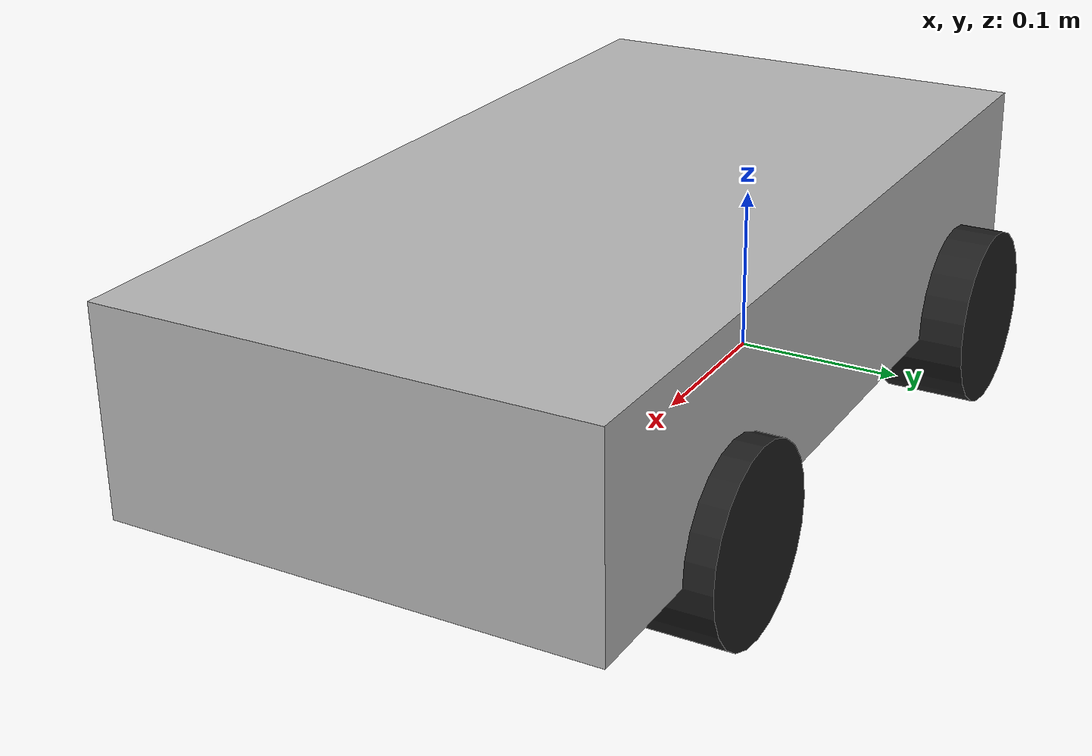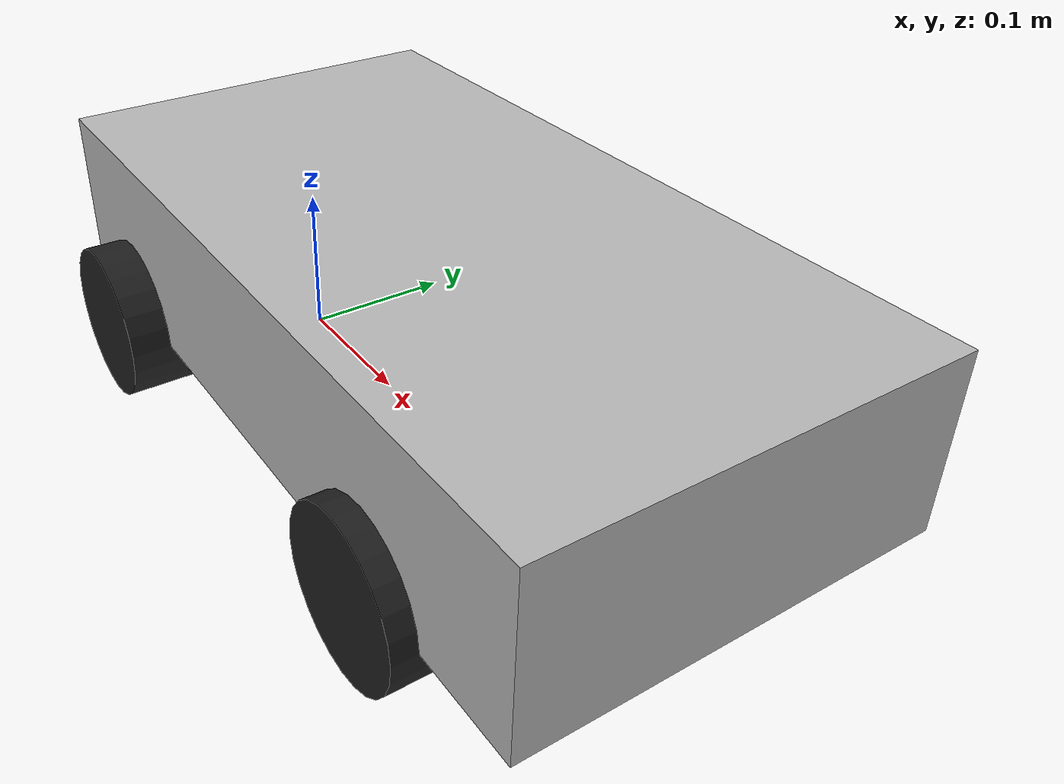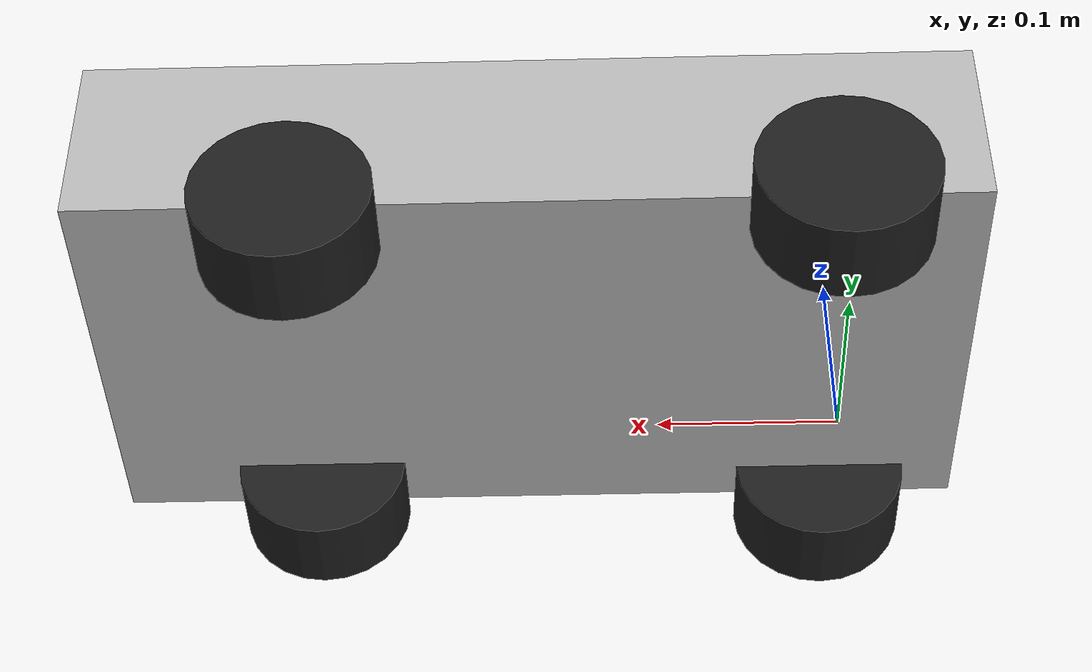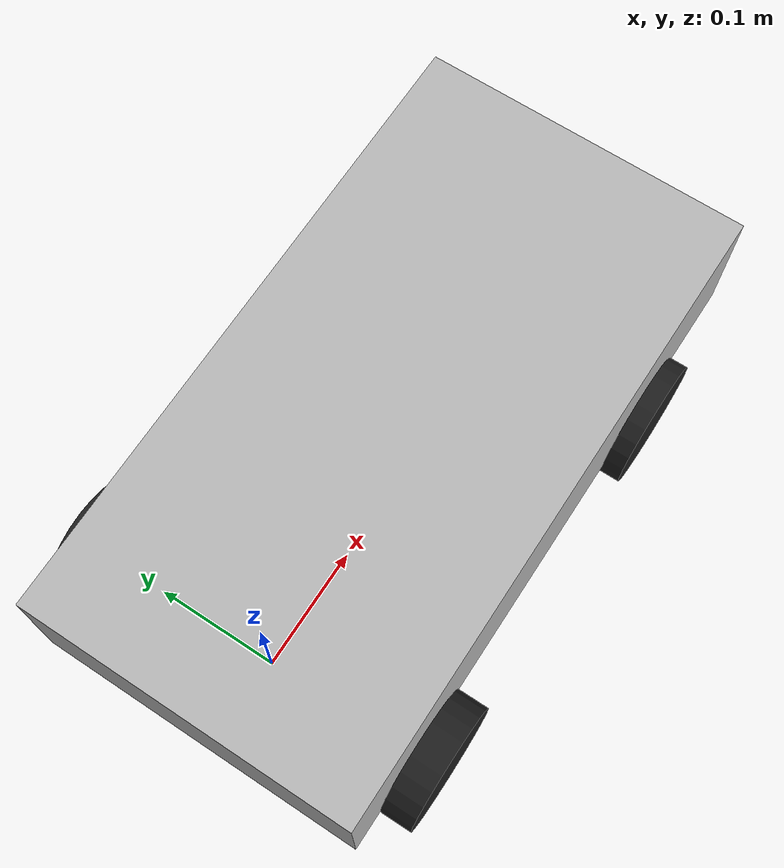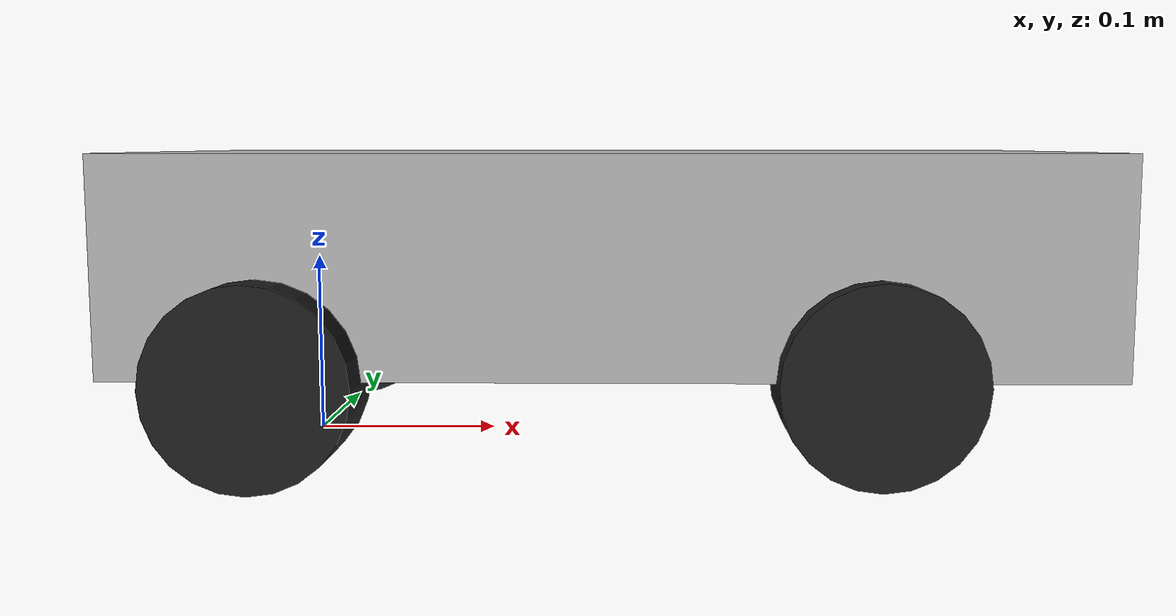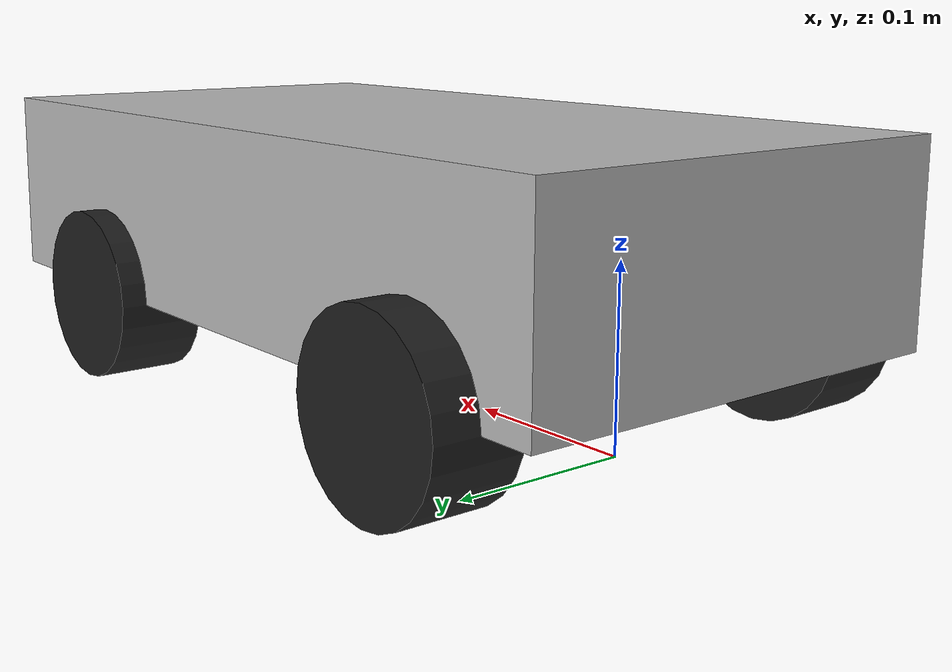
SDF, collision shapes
<?xml version="1.0"?>
<sdf version="1.4">
  <model name="Unicycle">
    <pose>0.0 0 0.05 0 0 0</pose>
    <link name="carbody">
      <pose>0.0 0 0 0 0 0</pose>
      <inertial>
        <pose>0.15 0 0.1 0 0 0</pose>
        <mass>2.4</mass>
        <!-- will have to do xacro-->
        <inertia>
          <ixx>0.41</ixx>
          <ixy>0</ixy>
          <ixz>0</ixz>
          <iyy>0.416553</iyy>
          <iyz>0</iyz>
          <izz>0.216553</izz>
        </inertia>
      </inertial>
      <collision name="carbody_collision">
        <pose>0.17 0.0 0.055 0.0 0.0 0.0</pose>
        <geometry>
          <box>
            <size>0.50 0.26 0.11</size>
          </box>
        </geometry>
        <surface>
          <contact>
            <ode/>
          </contact>
          <friction>
            <ode/>
          </friction>
        </surface>
      </collision>
      <visual name="carbody_visual">
        <pose>0.0 0.005 0.0 0.0 0.0 0.0</pose>
        <geometry>
          <mesh>
            <uri>model://rccar/meshes/traxxas1.dae</uri>
          </mesh>
        </geometry>
      </visual>
      <velocity_decay>
        <linear>0</linear>
        <angular>0</angular>
      </velocity_decay>
      <self_collide>0</self_collide>
    </link>
    <link name="rear_right_wheel">
      <pose>0 -0.13 0 1.57 0 0</pose>
      <inertial>
        <mass>0.6</mass>
        <inertia>
          <ixx>0.01</ixx>
          <ixy>0</ixy>
          <ixz>0</ixz>
          <iyy>0.01</iyy>
          <iyz>0</iyz>
          <izz>0.01</izz>
        </inertia>
      </inertial>
      <collision name="collision">
        <geometry>
          <cylinder>
            <radius>0.05</radius>
            <length>0.05</length>
          </cylinder>
        </geometry>
        <max_contacts>1</max_contacts>
        <surface>
          <friction>
            <ode>
              <mu>5.0</mu>
              <mu2>5.0</mu2>
              <fdir1>0 0 1</fdir1>
              <slip1>0.0</slip1>
              <slip2>0.0</slip2>
            </ode>
          </friction>
          <contact>
            <ode>
              <min_depth>0.001</min_depth>
              <kp>1e6</kp>
              <soft_cfm>0.005</soft_cfm>
            </ode>
          </contact>
        </surface>
      </collision>
      <visual name="visual">
        <pose>0 0 0 0 1.57079 0</pose>
        <geometry>
          <mesh>
            <scale>1 1 1</scale>
            <uri>model://rccar/meshes/Wheel.dae</uri>
          </mesh>
        </geometry>
        <material>
          <script>
            <name>Gazebo/Black</name>
            <uri>__default__</uri>
          </script>
        </material>
      </visual>
    </link>
    <link name="rear_left_wheel">
      <pose>0 0.13 0 1.57079 0 0</pose>
      <inertial>
        <mass>0.6</mass>
        <inertia>
          <ixx>0.01</ixx>
          <ixy>0</ixy>
          <ixz>0</ixz>
          <iyy>0.01</iyy>
          <iyz>0</iyz>
          <izz>0.01</izz>
        </inertia>
      </inertial>
      <collision name="collision">
        <geometry>
          <cylinder>
            <radius>0.05</radius>
            <length>0.05</length>
          </cylinder>
        </geometry>
        <max_contacts>1</max_contacts>
        <surface>
          <friction>
            <ode>
              <mu>5.0</mu>
              <mu2>5.0</mu2>
              <fdir1>0 0 1</fdir1>
              <slip1>0.0</slip1>
              <slip2>0.0</slip2>
            </ode>
          </friction>
          <contact>
            <ode>
              <min_depth>0.001</min_depth>
              <kp>1e6</kp>
              <soft_cfm>0.005</soft_cfm>
            </ode>
          </contact>
        </surface>
      </collision>
      <visual name="visual">
        <pose>0 0 0 0 1.57079 0</pose>
        <geometry>
          <mesh>
            <scale>1 1 1</scale>
            <uri>model://rccar/meshes/Wheel.dae</uri>
          </mesh>
        </geometry>
        <material>
          <script>
            <name>Gazebo/Black</name>
            <uri>__default__</uri>
          </script>
        </material>
      </visual>
      <velocity_decay>
        <linear>0</linear>
        <angular>0</angular>
      </velocity_decay>
      <velocity_decay>
        <linear>0</linear>
        <angular>0</angular>
      </velocity_decay>
      <self_collide>0</self_collide>
    </link>
    <joint type="revolute" name="rear_left_wheel_joint">
      <child>rear_left_wheel</child>
      <parent>carbody</parent>
      <axis>
        <xyz>0 1 0.0</xyz>
				<dynamics>
          <damping>0.0</damping>
        </dynamics>
      </axis>
    </joint>
    <joint type="revolute" name="rear_right_wheel_joint">
      <child>rear_right_wheel</child>
      <parent>carbody</parent>
      <axis>
        <xyz>0 1 0.0</xyz>
				<dynamics>
          <damping>0.0</damping>
        </dynamics>
      </axis>
    </joint>
    <link name="steeringblock1">
      <pose>0.3 -0.12 0 0 0 0</pose>
      <inertial>
        <pose>0 0 0 0 0 0</pose>
        <mass>0.1 </mass>
        <!-- very less mass-->
        <inertia>
          <ixx> 1e-3 </ixx>
          <ixy>0</ixy>
          <ixz>0</ixz>
          <iyy> 1e-3 </iyy>
          <iyz>0</iyz>
          <izz> 1 </izz><!-- Very High Inertia on Z axis-->
        </inertia>
      </inertial>
    </link>
    <joint name="base_to_steeringblock1" type="revolute">
      <child>steeringblock1</child>
      <parent>carbody</parent>
      <axis>
        <xyz>0 0 1</xyz>
        <limit>
          <lower>-0.785</lower>
          <upper>0.785</upper>
        </limit>
        <dynamics>
          <damping>0.0</damping>
        </dynamics>
      </axis>
      <physics>
        <ode>
          <limit>
            <cfm>0.0</cfm>
            <erp>0.5</erp>
          </limit>
        </ode>
      </physics>
    </joint>
    <link name="frontwheel1">
      <pose>0.3 -0.12 0 -1.570796 0 0</pose>
			<inertial>
        <mass>0.6</mass>
        <inertia>
          <ixx>0.01</ixx>
          <ixy>0</ixy>
          <ixz>0</ixz>
          <iyy>0.01</iyy>
          <iyz>0</iyz>
          <izz>0.01</izz>
				</inertia>
      </inertial>
      <collision name="frontwheel1_collision">
        <geometry>
          <cylinder>
            <length>0.05</length>
            <radius>0.05</radius>
          </cylinder>
        </geometry>
        <max_contacts>1</max_contacts>
        <surface>
          <friction>
            <ode>
              <mu>5.0</mu>
              <mu2>5.0</mu2>
              <fdir1>0 0 1</fdir1>
              <slip1>0.0</slip1>
              <slip2>0.0</slip2>
            </ode>
          </friction>
          <contact>
            <ode>
              <min_depth>0.001</min_depth>
              <kp>1e6</kp>
              <soft_cfm>0.005</soft_cfm>
            </ode>
          </contact>
        </surface>
      </collision>
      <visual name="frontwheel1_visual">
        <pose>0 0 0 0 1.57079 0</pose>
        <geometry>
          <mesh>
            <scale>1 1 1</scale>
            <uri>model://rccar/meshes/Wheel.dae</uri>
          </mesh>
        </geometry>
        <material>
          <script>
            <name>Gazebo/Black</name>
            <uri>__default__</uri>
          </script>
        </material>
      </visual>
      <velocity_decay>
        <linear>0</linear>
        <angular>0</angular>
      </velocity_decay>
      <self_collide>0</self_collide>
    </link>
    <joint name="steeringblock1_to_frontwheel1" type="revolute">
      <child>frontwheel1</child>
      <parent>steeringblock1</parent>
      <axis>
        <xyz>0 1 0</xyz>
        <dynamics>
          <damping>0.0</damping>
        </dynamics>
      </axis>
    </joint>
    <link name="steeringblock2">
      <pose>0.3 0.12 0 0 0 0</pose>
      <inertial>
        <pose>0 0 0 0 0 0</pose>
        <mass>0.1 </mass>
        <!-- very less mass-->
        <inertia>
          <ixx> 1e-3 </ixx>
          <ixy>0</ixy>
          <ixz>0</ixz>
          <iyy> 1e-3 </iyy>
          <iyz>0</iyz>
          <izz> 1 </izz>
        </inertia>
      </inertial>
    </link>
    <joint name="base_to_steeringblock2" type="revolute">
      <child>steeringblock2</child>
      <parent>carbody</parent>
      <axis>
        <xyz>0 0 1</xyz>
        <limit>
          <lower>-0.785</lower>
          <upper>0.785</upper>
        </limit>
        <dynamics>
          <damping>0.0</damping>
        </dynamics>
      </axis>
      <physics>
        <ode>
          <limit>
            <cfm>0.000000</cfm>
            <erp>0.500000</erp>
          </limit>
        </ode>
      </physics>
    </joint>
    <link name="frontwheel2">
      <pose>0.3 0.12 0 -1.570796 0 0</pose>
			<inertial>
        <mass>0.6</mass>
        <inertia>
          <ixx>0.01</ixx>
          <ixy>0</ixy>
          <ixz>0</ixz>
          <iyy>0.01</iyy>
          <iyz>0</iyz>
          <izz>0.01</izz>
				</inertia>
      </inertial>
      <collision name="frontwheel2_collision">
        <geometry>
          <cylinder>
            <length>0.05</length>
            <radius>0.05</radius>
          </cylinder>
        </geometry>
        <max_contacts>1</max_contacts>
        <surface>
          <friction>
            <ode>
              <mu>5.0</mu>
              <mu2>5.0</mu2>
              <fdir1>0 0 1</fdir1>
              <slip1>0.0</slip1>
              <slip2>0.0</slip2>
            </ode>
          </friction>
          <contact>
            <ode>
              <min_depth>0.001</min_depth>
              <kp>1e6</kp>
              <soft_cfm>0.005</soft_cfm>
            </ode>
          </contact>
        </surface>
      </collision>
      <visual name="frontwheel2_visual">
        <pose>0 0 0 0 1.57079 0</pose>
        <geometry>
          <mesh>
            <scale>1 1 1</scale>
            <uri>model://rccar/meshes/Wheel.dae</uri>
          </mesh>
        </geometry>
        <material>
          <script>
            <name>Gazebo/Black</name>
            <uri>__default__</uri>
          </script>
        </material>
      </visual>
      <velocity_decay>
        <linear>0</linear>
        <angular>0</angular>
      </velocity_decay>
      <self_collide>0</self_collide>
    </link>
    <joint name="steeringblock2_to_frontwheel2" type="revolute">
      <child>frontwheel2</child>
      <parent>steeringblock2</parent>
      <axis>
        <xyz>0 1 0</xyz>
        <dynamics>
          <damping>0.0</damping>
        </dynamics>
      </axis>
    </joint>
  </model>
</sdf>
